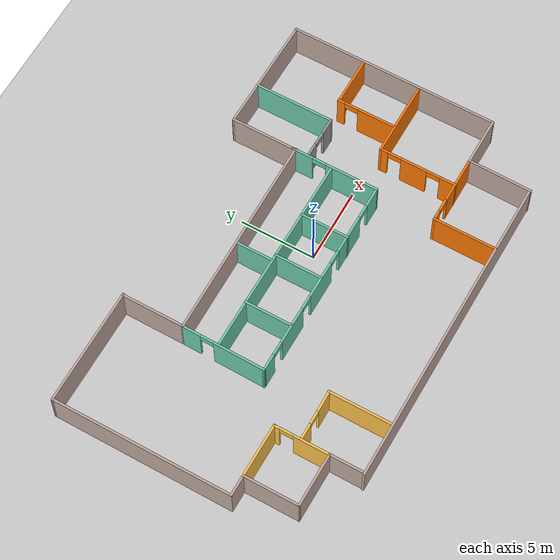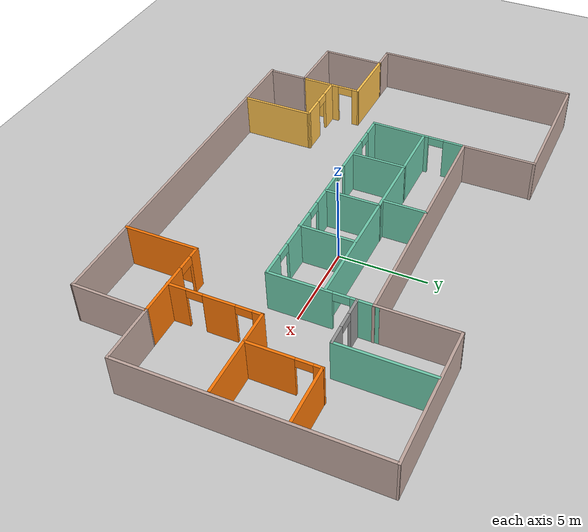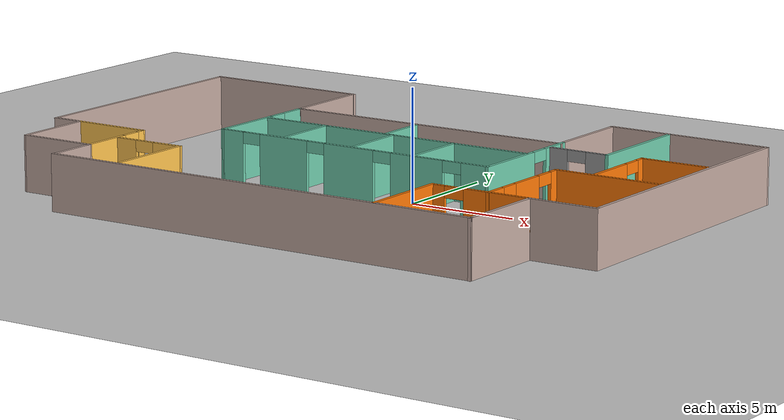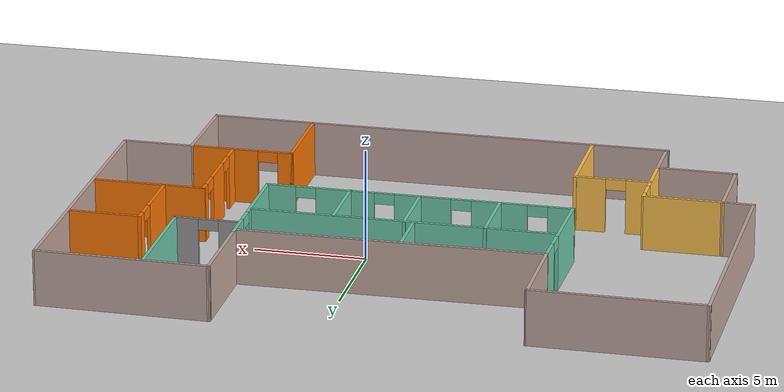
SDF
<sdf version="1.7">
 <world name="default">
  <model name="ground_plane">
   <static>1</static>
   <link name="link">
    <collision name="collision">
     <geometry><plane><normal>0 0 1</normal><size>100 100</size></plane></geometry>
     <surface><friction><ode><mu>100</mu><mu2>50</mu2></ode></friction></surface>
    </collision>
    <visual name="visual">
     <cast_shadows>0</cast_shadows>
     <geometry><plane><normal>0 0 1</normal><size>100 100</size></plane></geometry>
     <material>
      <script><uri>file://media/materials/scripts/gazebo.material</uri><name>Gazebo/Grey</name></script>
     </material>
    </visual>
   </link>
  </model>
  <model name="task_env">
   <pose>-1.95063 -0.71623 0 0 -0 0</pose>
   <link name="Wall_0">
    <collision name="Wall_0_Collision">
     <geometry><box><size>21 0.15 2.5</size></box></geometry>
     <pose>0 0 1.25 0 -0 0</pose>
    </collision>
    <visual name="Wall_0_Visual">
     <pose>0 0 1.25 0 -0 0</pose>
     <geometry><box><size>21 0.15 2.5</size></box></geometry>
     <material>
      <script><uri>file://media/materials/scripts/gazebo.material</uri><name>Gazebo/Grey</name></script>
      <ambient>0.760784 0.662745 0.627451 1</ambient>
     </material>
     <meta><layer>0</layer></meta>
    </visual>
    <pose>0.813601 -9.0219 0 0 -0 3.14159</pose>
   </link>
   <link name="Wall_14">
    <pose>-6.81536 1.8239 0 0 -0 -1.58573</pose>
    <visual name="Wall_14_Visual_0">
     <pose>-2.17991 0 1.25 0 -0 0</pose>
     <geometry><box><size>1.29492 0.15 2.5</size></box></geometry>
     <material>
      <script><uri>file://media/materials/scripts/gazebo.material</uri><name>Gazebo/Grey</name></script>
      <ambient>0.435294 0.796078 0.67451 1</ambient>
     </material>
     <meta><layer>0</layer></meta>
    </visual>
    <collision name="Wall_14_Collision_0">
     <geometry><box><size>1.29492 0.15 2.5</size></box></geometry>
     <pose>-2.17991 0 1.25 0 -0 0</pose>
    </collision>
    <visual name="Wall_14_Visual_1">
     <pose>1.09746 0 1.25 0 -0 0</pose>
     <geometry><box><size>3.45981 0.15 2.5</size></box></geometry>
     <material>
      <script><uri>file://media/materials/scripts/gazebo.material</uri><name>Gazebo/Grey</name></script>
      <ambient>0.435294 0.796078 0.67451 1</ambient>
     </material>
     <meta><layer>0</layer></meta>
    </visual>
    <collision name="Wall_14_Collision_1">
     <geometry><box><size>3.45981 0.15 2.5</size></box></geometry>
     <pose>1.09746 0 1.25 0 -0 0</pose>
    </collision>
    <visual name="Wall_14_Visual_2">
     <pose>-1.08245 0 2.25 0 -0 0</pose>
     <geometry><box><size>0.9 0.15 0.5</size></box></geometry>
     <material>
      <script><uri>file://media/materials/scripts/gazebo.material</uri><name>Gazebo/Grey</name></script>
      <ambient>0.435294 0.796078 0.67451 1</ambient>
     </material>
     <meta><layer>0</layer></meta>
    </visual>
    <collision name="Wall_14_Collision_2">
     <geometry><box><size>0.9 0.15 0.5</size></box></geometry>
     <pose>-1.08245 0 2.25 0 -0 0</pose>
    </collision>
   </link>
   <link name="Wall_15">
    <pose>-0.056466 -0.928165 0 0 -0 0</pose>
    <visual name="Wall_15_Visual_0">
     <pose>-6.28596 0 1.25 0 -0 0</pose>
     <geometry><box><size>1.17807 0.15 2.5</size></box></geometry>
     <material>
      <script><uri>file://media/materials/scripts/gazebo.material</uri><name>Gazebo/Grey</name></script>
      <ambient>0.435294 0.796078 0.67451 1</ambient>
     </material>
     <meta><layer>0</layer></meta>
    </visual>
    <collision name="Wall_15_Collision_0">
     <geometry><box><size>1.17807 0.15 2.5</size></box></geometry>
     <pose>-6.28596 0 1.25 0 -0 0</pose>
    </collision>
    <visual name="Wall_15_Visual_1">
     <pose>-3.55454 0 1.25 0 -0 0</pose>
     <geometry><box><size>2.48478 0.15 2.5</size></box></geometry>
     <material>
      <script><uri>file://media/materials/scripts/gazebo.material</uri><name>Gazebo/Grey</name></script>
      <ambient>0.435294 0.796078 0.67451 1</ambient>
     </material>
     <meta><layer>0</layer></meta>
    </visual>
    <collision name="Wall_15_Collision_1">
     <geometry><box><size>2.48478 0.15 2.5</size></box></geometry>
     <pose>-3.55454 0 1.25 0 -0 0</pose>
    </collision>
    <visual name="Wall_15_Visual_2">
     <pose>-0.146887 0 1.25 0 -0 0</pose>
     <geometry><box><size>2.53052 0.15 2.5</size></box></geometry>
     <material>
      <script><uri>file://media/materials/scripts/gazebo.material</uri><name>Gazebo/Grey</name></script>
      <ambient>0.435294 0.796078 0.67451 1</ambient>
     </material>
     <meta><layer>0</layer></meta>
    </visual>
    <collision name="Wall_15_Collision_2">
     <geometry><box><size>2.53052 0.15 2.5</size></box></geometry>
     <pose>-0.146887 0 1.25 0 -0 0</pose>
    </collision>
    <visual name="Wall_15_Visual_3">
     <pose>3.32937 0 1.25 0 -0 0</pose>
     <geometry><box><size>2.622 0.15 2.5</size></box></geometry>
     <material>
      <script><uri>file://media/materials/scripts/gazebo.material</uri><name>Gazebo/Grey</name></script>
      <ambient>0.435294 0.796078 0.67451 1</ambient>
     </material>
     <meta><layer>0</layer></meta>
    </visual>
    <collision name="Wall_15_Collision_3">
     <geometry><box><size>2.622 0.15 2.5</size></box></geometry>
     <pose>3.32937 0 1.25 0 -0 0</pose>
    </collision>
    <visual name="Wall_15_Visual_4">
     <pose>6.20769 0 1.25 0 -0 0</pose>
     <geometry><box><size>1.33463 0.15 2.5</size></box></geometry>
     <material>
      <script><uri>file://media/materials/scripts/gazebo.material</uri><name>Gazebo/Grey</name></script>
      <ambient>0.435294 0.796078 0.67451 1</ambient>
     </material>
     <meta><layer>0</layer></meta>
    </visual>
    <collision name="Wall_15_Collision_4">
     <geometry><box><size>1.33463 0.15 2.5</size></box></geometry>
     <pose>6.20769 0 1.25 0 -0 0</pose>
    </collision>
    <visual name="Wall_15_Visual_5">
     <pose>-5.24693 0 2.25 0 -0 0</pose>
     <geometry><box><size>0.9 0.15 0.5</size></box></geometry>
     <material>
      <script><uri>file://media/materials/scripts/gazebo.material</uri><name>Gazebo/Grey</name></script>
      <ambient>0.435294 0.796078 0.67451 1</ambient>
     </material>
     <meta><layer>0</layer></meta>
    </visual>
    <collision name="Wall_15_Collision_5">
     <geometry><box><size>0.9 0.15 0.5</size></box></geometry>
     <pose>-5.24693 0 2.25 0 -0 0</pose>
    </collision>
    <visual name="Wall_15_Visual_6">
     <pose>-1.86215 0 2.25 0 -0 0</pose>
     <geometry><box><size>0.9 0.15 0.5</size></box></geometry>
     <material>
      <script><uri>file://media/materials/scripts/gazebo.material</uri><name>Gazebo/Grey</name></script>
      <ambient>0.435294 0.796078 0.67451 1</ambient>
     </material>
     <meta><layer>0</layer></meta>
    </visual>
    <collision name="Wall_15_Collision_6">
     <geometry><box><size>0.9 0.15 0.5</size></box></geometry>
     <pose>-1.86215 0 2.25 0 -0 0</pose>
    </collision>
    <visual name="Wall_15_Visual_7">
     <pose>1.56837 0 2.25 0 -0 0</pose>
     <geometry><box><size>0.9 0.15 0.5</size></box></geometry>
     <material>
      <script><uri>file://media/materials/scripts/gazebo.material</uri><name>Gazebo/Grey</name></script>
      <ambient>0.435294 0.796078 0.67451 1</ambient>
     </material>
     <meta><layer>0</layer></meta>
    </visual>
    <collision name="Wall_15_Collision_7">
     <geometry><box><size>0.9 0.15 0.5</size></box></geometry>
     <pose>1.56837 0 2.25 0 -0 0</pose>
    </collision>
    <visual name="Wall_15_Visual_8">
     <pose>5.09037 0 2.25 0 -0 0</pose>
     <geometry><box><size>0.9 0.15 0.5</size></box></geometry>
     <material>
      <script><uri>file://media/materials/scripts/gazebo.material</uri><name>Gazebo/Grey</name></script>
      <ambient>0.435294 0.796078 0.67451 1</ambient>
     </material>
     <meta><layer>0</layer></meta>
    </visual>
    <collision name="Wall_15_Collision_8">
     <geometry><box><size>0.9 0.15 0.5</size></box></geometry>
     <pose>5.09037 0 2.25 0 -0 0</pose>
    </collision>
   </link>
   <link name="Wall_16">
    <pose>6.77412 1.99683 0 0 -0 1.5708</pose>
    <visual name="Wall_16_Visual_0">
     <pose>-1.2114 0 1.25 0 -0 0</pose>
     <geometry><box><size>3.57719 0.15 2.5</size></box></geometry>
     <material>
      <script><uri>file://media/materials/scripts/gazebo.material</uri><name>Gazebo/Grey</name></script>
      <ambient>0.435294 0.796078 0.67451 1</ambient>
     </material>
     <meta><layer>0</layer></meta>
    </visual>
    <collision name="Wall_16_Collision_0">
     <geometry><box><size>3.57719 0.15 2.5</size></box></geometry>
     <pose>-1.2114 0 1.25 0 -0 0</pose>
    </collision>
    <visual name="Wall_16_Visual_1">
     <pose>2.2386 0 1.25 0 -0 0</pose>
     <geometry><box><size>1.52281 0.15 2.5</size></box></geometry>
     <material>
      <script><uri>file://media/materials/scripts/gazebo.material</uri><name>Gazebo/Grey</name></script>
      <ambient>0.435294 0.796078 0.67451 1</ambient>
     </material>
     <meta><layer>0</layer></meta>
    </visual>
    <collision name="Wall_16_Collision_1">
     <geometry><box><size>1.52281 0.15 2.5</size></box></geometry>
     <pose>2.2386 0 1.25 0 -0 0</pose>
    </collision>
    <visual name="Wall_16_Visual_2">
     <pose>1.02719 0 2.25 0 -0 0</pose>
     <geometry><box><size>0.9 0.15 0.5</size></box></geometry>
     <material>
      <script><uri>file://media/materials/scripts/gazebo.material</uri><name>Gazebo/Grey</name></script>
      <ambient>0.435294 0.796078 0.67451 1</ambient>
     </material>
     <meta><layer>0</layer></meta>
    </visual>
    <collision name="Wall_16_Collision_2">
     <geometry><box><size>0.9 0.15 0.5</size></box></geometry>
     <pose>1.02719 0 2.25 0 -0 0</pose>
    </collision>
   </link>
   <link name="Wall_18">
    <collision name="Wall_18_Collision">
     <geometry><box><size>13.5 0.15 2.5</size></box></geometry>
     <pose>0 0 1.25 0 -0 0</pose>
    </collision>
    <visual name="Wall_18_Visual">
     <pose>0 0 1.25 0 -0 0</pose>
     <geometry><box><size>13.5 0.15 2.5</size></box></geometry>
     <material>
      <script><uri>file://media/materials/scripts/gazebo.material</uri><name>Gazebo/Grey</name></script>
      <ambient>0.435294 0.796078 0.67451 1</ambient>
     </material>
     <meta><layer>0</layer></meta>
    </visual>
    <pose>-0.003534 2.1603 0 0 -0 0</pose>
   </link>
   <link name="Wall_2">
    <collision name="Wall_2_Collision">
     <geometry><box><size>4.30502 0.15 2.5</size></box></geometry>
     <pose>0 0 1.25 0 -0 0</pose>
    </collision>
    <visual name="Wall_2_Visual">
     <pose>0 0 1.25 0 -0 0</pose>
     <geometry><box><size>4.30502 0.15 2.5</size></box></geometry>
     <material>
      <script><uri>file://media/materials/scripts/gazebo.material</uri><name>Gazebo/Grey</name></script>
      <ambient>0.760784 0.662745 0.627451 1</ambient>
     </material>
     <meta><layer>0</layer></meta>
    </visual>
    <pose>11.269 -6.97503 0 0 -0 1.55615</pose>
   </link>
   <link name="Wall_20">
    <collision name="Wall_20_Collision">
     <geometry><box><size>2.5 0.15 2.5</size></box></geometry>
     <pose>0 0 1.25 0 -0 0</pose>
    </collision>
    <visual name="Wall_20_Visual">
     <pose>0 0 1.25 0 -0 0</pose>
     <geometry><box><size>2.5 0.15 2.5</size></box></geometry>
     <material>
      <script><uri>file://media/materials/scripts/gazebo.material</uri><name>Gazebo/Grey</name></script>
      <ambient>0.435294 0.796078 0.67451 1</ambient>
     </material>
     <meta><layer>0</layer></meta>
    </visual>
    <pose>-0.484987 3.44269 0 0 -0 -1.5708</pose>
   </link>
   <link name="Wall_22">
    <collision name="Wall_22_Collision">
     <geometry><box><size>3.25 0.15 2.5</size></box></geometry>
     <pose>0 0 1.25 0 -0 0</pose>
    </collision>
    <visual name="Wall_22_Visual">
     <pose>0 0 1.25 0 -0 0</pose>
     <geometry><box><size>3.25 0.15 2.5</size></box></geometry>
     <material>
      <script><uri>file://media/materials/scripts/gazebo.material</uri><name>Gazebo/Grey</name></script>
      <ambient>0.435294 0.796078 0.67451 1</ambient>
     </material>
     <meta><layer>0</layer></meta>
    </visual>
    <pose>-3.62724 0.626735 0 0 -0 -1.5708</pose>
   </link>
   <link name="Wall_26">
    <collision name="Wall_26_Collision">
     <geometry><box><size>3.25 0.15 2.5</size></box></geometry>
     <pose>0 0 1.25 0 -0 0</pose>
    </collision>
    <visual name="Wall_26_Visual">
     <pose>0 0 1.25 0 -0 0</pose>
     <geometry><box><size>3.25 0.15 2.5</size></box></geometry>
     <material>
      <script><uri>file://media/materials/scripts/gazebo.material</uri><name>Gazebo/Grey</name></script>
      <ambient>0.435294 0.796078 0.67451 1</ambient>
     </material>
     <meta><layer>0</layer></meta>
    </visual>
    <pose>3.05396 0.591755 0 0 -0 -1.5708</pose>
   </link>
   <link name="Wall_28">
    <collision name="Wall_28_Collision">
     <geometry><box><size>3.25 0.15 2.5</size></box></geometry>
     <pose>0 0 1.25 0 -0 0</pose>
    </collision>
    <visual name="Wall_28_Visual">
     <pose>0 0 1.25 0 -0 0</pose>
     <geometry><box><size>3.25 0.15 2.5</size></box></geometry>
     <material>
      <script><uri>file://media/materials/scripts/gazebo.material</uri><name>Gazebo/Grey</name></script>
      <ambient>0.435294 0.796078 0.67451 1</ambient>
     </material>
     <meta><layer>0</layer></meta>
    </visual>
    <pose>-0.072747 0.627413 0 0 -0 -1.5708</pose>
   </link>
   <link name="Wall_3">
    <collision name="Wall_3_Collision">
     <geometry><box><size>3.25 0.15 2.5</size></box></geometry>
     <pose>0 0 1.25 0 -0 0</pose>
    </collision>
    <visual name="Wall_3_Visual">
     <pose>0 0 1.25 0 -0 0</pose>
     <geometry><box><size>3.25 0.15 2.5</size></box></geometry>
     <material>
      <script><uri>file://media/materials/scripts/gazebo.material</uri><name>Gazebo/Grey</name></script>
      <ambient>0.760784 0.662745 0.627451 1</ambient>
     </material>
     <meta><layer>0</layer></meta>
    </visual>
    <pose>12.8494 -4.89774 0 0 -0 0</pose>
   </link>
   <link name="Wall_30">
    <pose>8.21532 3.82761 0 0 -0 0</pose>
    <visual name="Wall_30_Visual_0">
     <pose>-0.999101 0 1.25 0 -0 0</pose>
     <geometry><box><size>1.0018 0.15 2.5</size></box></geometry>
     <material>
      <script><uri>file://media/materials/scripts/gazebo.material</uri><name>Gazebo/Grey</name></script>
      <ambient>1 1 1 1</ambient>
     </material>
     <meta><layer>0</layer></meta>
    </visual>
    <collision name="Wall_30_Collision_0">
     <geometry><box><size>1.0018 0.15 2.5</size></box></geometry>
     <pose>-0.999101 0 1.25 0 -0 0</pose>
    </collision>
    <visual name="Wall_30_Visual_1">
     <pose>0.950899 0 1.25 0 -0 0</pose>
     <geometry><box><size>1.0982 0.15 2.5</size></box></geometry>
     <material>
      <script><uri>file://media/materials/scripts/gazebo.material</uri><name>Gazebo/Grey</name></script>
      <ambient>1 1 1 1</ambient>
     </material>
     <meta><layer>0</layer></meta>
    </visual>
    <collision name="Wall_30_Collision_1">
     <geometry><box><size>1.0982 0.15 2.5</size></box></geometry>
     <pose>0.950899 0 1.25 0 -0 0</pose>
    </collision>
    <visual name="Wall_30_Visual_2">
     <pose>-0.048203 0 2.25 0 -0 0</pose>
     <geometry><box><size>0.9 0.15 0.5</size></box></geometry>
     <material>
      <script><uri>file://media/materials/scripts/gazebo.material</uri><name>Gazebo/Grey</name></script>
      <ambient>1 1 1 1</ambient>
     </material>
     <meta><layer>0</layer></meta>
    </visual>
    <collision name="Wall_30_Collision_2">
     <geometry><box><size>0.9 0.15 0.5</size></box></geometry>
     <pose>-0.048203 0 2.25 0 -0 0</pose>
    </collision>
   </link>
   <link name="Wall_31">
    <collision name="Wall_31_Collision">
     <geometry><box><size>5.25 0.15 2.5</size></box></geometry>
     <pose>0 0 1.25 0 -0 0</pose>
    </collision>
    <visual name="Wall_31_Visual">
     <pose>0 0 1.25 0 -0 0</pose>
     <geometry><box><size>5.25 0.15 2.5</size></box></geometry>
     <material>
      <script><uri>file://media/materials/scripts/gazebo.material</uri><name>Gazebo/Grey</name></script>
      <ambient>0.435294 0.796078 0.67451 1</ambient>
     </material>
     <meta><layer>0</layer></meta>
    </visual>
    <pose>9.64032 6.37761 0 0 -0 1.5708</pose>
   </link>
   <link name="Wall_33">
    <pose>-7.87138 -4.88643 0 0 -0 0.010314</pose>
    <visual name="Wall_33_Visual_0">
     <pose>-1.17411 0 1.25 0 -0 0</pose>
     <geometry><box><size>1.1406 0.15 2.5</size></box></geometry>
     <material>
      <script><uri>file://media/materials/scripts/gazebo.material</uri><name>Gazebo/Grey</name></script>
      <ambient>1 0.764706 0.305882 1</ambient>
     </material>
     <meta><layer>0</layer></meta>
    </visual>
    <collision name="Wall_33_Collision_0">
     <geometry><box><size>1.1406 0.15 2.5</size></box></geometry>
     <pose>-1.17411 0 1.25 0 -0 0</pose>
    </collision>
    <visual name="Wall_33_Visual_1">
     <pose>1.0203 0 1.25 0 -0 0</pose>
     <geometry><box><size>1.44823 0.15 2.5</size></box></geometry>
     <material>
      <script><uri>file://media/materials/scripts/gazebo.material</uri><name>Gazebo/Grey</name></script>
      <ambient>1 0.764706 0.305882 1</ambient>
     </material>
     <meta><layer>0</layer></meta>
    </visual>
    <collision name="Wall_33_Collision_1">
     <geometry><box><size>1.44823 0.15 2.5</size></box></geometry>
     <pose>1.0203 0 1.25 0 -0 0</pose>
    </collision>
    <visual name="Wall_33_Visual_2">
     <pose>-0.153815 0 2.25 0 -0 0</pose>
     <geometry><box><size>0.9 0.15 0.5</size></box></geometry>
     <material>
      <script><uri>file://media/materials/scripts/gazebo.material</uri><name>Gazebo/Grey</name></script>
      <ambient>1 0.764706 0.305882 1</ambient>
     </material>
     <meta><layer>0</layer></meta>
    </visual>
    <collision name="Wall_33_Collision_2">
     <geometry><box><size>0.9 0.15 0.5</size></box></geometry>
     <pose>-0.153815 0 2.25 0 -0 0</pose>
    </collision>
   </link>
   <link name="Wall_34">
    <collision name="Wall_34_Collision">
     <geometry><box><size>4.25 0.15 2.5</size></box></geometry>
     <pose>0 0 1.25 0 -0 0</pose>
    </collision>
    <visual name="Wall_34_Visual">
     <pose>0 0 1.25 0 -0 0</pose>
     <geometry><box><size>4.25 0.15 2.5</size></box></geometry>
     <material>
      <script><uri>file://media/materials/scripts/gazebo.material</uri><name>Gazebo/Grey</name></script>
      <ambient>1 0.764706 0.305882 1</ambient>
     </material>
     <meta><layer>0</layer></meta>
    </visual>
    <pose>-6.20205 -6.89932 0 0 -0 -1.5708</pose>
   </link>
   <link name="Wall_36">
    <pose>8.99944 -4.89774 0 0 -0 3.14159</pose>
    <visual name="Wall_36_Visual_0">
     <pose>-0.798861 0 1.25 0 -0 0</pose>
     <geometry><box><size>3.15228 0.15 2.5</size></box></geometry>
     <material>
      <script><uri>file://media/materials/scripts/gazebo.material</uri><name>Gazebo/Grey</name></script>
      <ambient>0.996078 0.47451 0.0196078 1</ambient>
     </material>
     <meta><layer>0</layer></meta>
    </visual>
    <collision name="Wall_36_Collision_0">
     <geometry><box><size>3.15228 0.15 2.5</size></box></geometry>
     <pose>-0.798861 0 1.25 0 -0 0</pose>
    </collision>
    <visual name="Wall_36_Visual_1">
     <pose>2.02614 0 1.25 0 -0 0</pose>
     <geometry><box><size>0.697723 0.15 2.5</size></box></geometry>
     <material>
      <script><uri>file://media/materials/scripts/gazebo.material</uri><name>Gazebo/Grey</name></script>
      <ambient>0.996078 0.47451 0.0196078 1</ambient>
     </material>
     <meta><layer>0</layer></meta>
    </visual>
    <collision name="Wall_36_Collision_1">
     <geometry><box><size>0.697723 0.15 2.5</size></box></geometry>
     <pose>2.02614 0 1.25 0 -0 0</pose>
    </collision>
    <visual name="Wall_36_Visual_2">
     <pose>1.22728 0 2.25 0 -0 0</pose>
     <geometry><box><size>0.9 0.15 0.5</size></box></geometry>
     <material>
      <script><uri>file://media/materials/scripts/gazebo.material</uri><name>Gazebo/Grey</name></script>
      <ambient>0.996078 0.47451 0.0196078 1</ambient>
     </material>
     <meta><layer>0</layer></meta>
    </visual>
    <collision name="Wall_36_Collision_2">
     <geometry><box><size>0.9 0.15 0.5</size></box></geometry>
     <pose>1.22728 0 2.25 0 -0 0</pose>
    </collision>
   </link>
   <link name="Wall_37">
    <collision name="Wall_37_Collision">
     <geometry><box><size>4.25 0.15 2.5</size></box></geometry>
     <pose>0 0 1.25 0 -0 0</pose>
    </collision>
    <visual name="Wall_37_Visual">
     <pose>0 0 1.25 0 -0 0</pose>
     <geometry><box><size>4.25 0.15 2.5</size></box></geometry>
     <material>
      <script><uri>file://media/materials/scripts/gazebo.material</uri><name>Gazebo/Grey</name></script>
      <ambient>0.996078 0.47451 0.0196078 1</ambient>
     </material>
     <meta><layer>0</layer></meta>
    </visual>
    <pose>6.69944 -6.94774 0 0 -0 -1.5708</pose>
   </link>
   <link name="Wall_39">
    <pose>9.37843 -2.36401 0 0 -0 1.5708</pose>
    <visual name="Wall_39_Visual_0">
     <pose>-2.07103 0 1.25 0 -0 0</pose>
     <geometry><box><size>1.10794 0.15 2.5</size></box></geometry>
     <material>
      <script><uri>file://media/materials/scripts/gazebo.material</uri><name>Gazebo/Grey</name></script>
      <ambient>0.996078 0.47451 0.0196078 1</ambient>
     </material>
     <meta><layer>0</layer></meta>
    </visual>
    <collision name="Wall_39_Collision_0">
     <geometry><box><size>1.10794 0.15 2.5</size></box></geometry>
     <pose>-2.07103 0 1.25 0 -0 0</pose>
    </collision>
    <visual name="Wall_39_Visual_1">
     <pose>0.261125 0 1.25 0 -0 0</pose>
     <geometry><box><size>1.75636 0.15 2.5</size></box></geometry>
     <material>
      <script><uri>file://media/materials/scripts/gazebo.material</uri><name>Gazebo/Grey</name></script>
      <ambient>0.996078 0.47451 0.0196078 1</ambient>
     </material>
     <meta><layer>0</layer></meta>
    </visual>
    <collision name="Wall_39_Collision_1">
     <geometry><box><size>1.75636 0.15 2.5</size></box></geometry>
     <pose>0.261125 0 1.25 0 -0 0</pose>
    </collision>
    <visual name="Wall_39_Visual_2">
     <pose>2.33215 0 1.25 0 -0 0</pose>
     <geometry><box><size>0.585692 0.15 2.5</size></box></geometry>
     <material>
      <script><uri>file://media/materials/scripts/gazebo.material</uri><name>Gazebo/Grey</name></script>
      <ambient>0.996078 0.47451 0.0196078 1</ambient>
     </material>
     <meta><layer>0</layer></meta>
    </visual>
    <collision name="Wall_39_Collision_2">
     <geometry><box><size>0.585692 0.15 2.5</size></box></geometry>
     <pose>2.33215 0 1.25 0 -0 0</pose>
    </collision>
    <visual name="Wall_39_Visual_3">
     <pose>-1.06706 0 2.25 0 -0 0</pose>
     <geometry><box><size>0.9 0.15 0.5</size></box></geometry>
     <material>
      <script><uri>file://media/materials/scripts/gazebo.material</uri><name>Gazebo/Grey</name></script>
      <ambient>0.996078 0.47451 0.0196078 1</ambient>
     </material>
     <meta><layer>0</layer></meta>
    </visual>
    <collision name="Wall_39_Collision_3">
     <geometry><box><size>0.9 0.15 0.5</size></box></geometry>
     <pose>-1.06706 0 2.25 0 -0 0</pose>
    </collision>
    <visual name="Wall_39_Visual_4">
     <pose>1.58931 0 2.25 0 -0 0</pose>
     <geometry><box><size>0.9 0.15 0.5</size></box></geometry>
     <material>
      <script><uri>file://media/materials/scripts/gazebo.material</uri><name>Gazebo/Grey</name></script>
      <ambient>0.996078 0.47451 0.0196078 1</ambient>
     </material>
     <meta><layer>0</layer></meta>
    </visual>
    <collision name="Wall_39_Collision_4">
     <geometry><box><size>0.9 0.15 0.5</size></box></geometry>
     <pose>1.58931 0 2.25 0 -0 0</pose>
    </collision>
   </link>
   <link name="Wall_4">
    <collision name="Wall_4_Collision">
     <geometry><box><size>14 0.15 2.5</size></box></geometry>
     <pose>0 0 1.25 0 -0 0</pose>
    </collision>
    <visual name="Wall_4_Visual">
     <pose>0 0 1.25 0 -0 0</pose>
     <geometry><box><size>14 0.15 2.5</size></box></geometry>
     <material>
      <script><uri>file://media/materials/scripts/gazebo.material</uri><name>Gazebo/Grey</name></script>
      <ambient>0.760784 0.662745 0.627451 1</ambient>
     </material>
     <meta><layer>0</layer></meta>
    </visual>
    <pose>14.3994 2.02726 0 0 -0 1.5708</pose>
   </link>
   <link name="Wall_40">
    <collision name="Wall_40_Collision">
     <geometry><box><size>5 0.15 2.5</size></box></geometry>
     <pose>0 0 1.25 0 -0 0</pose>
    </collision>
    <visual name="Wall_40_Visual">
     <pose>0 0 1.25 0 -0 0</pose>
     <geometry><box><size>5 0.15 2.5</size></box></geometry>
     <material>
      <script><uri>file://media/materials/scripts/gazebo.material</uri><name>Gazebo/Grey</name></script>
      <ambient>0.996078 0.47451 0.0196078 1</ambient>
     </material>
     <meta><layer>0</layer></meta>
    </visual>
    <pose>11.8034 0.185989 0 0 -0 0</pose>
   </link>
   <link name="Wall_42">
    <pose>11.164 2.16814 0 0 -0 1.5708</pose>
    <visual name="Wall_42_Visual_0">
     <pose>-0.710725 0 1.25 0 -0 0</pose>
     <geometry><box><size>2.57855 0.15 2.5</size></box></geometry>
     <material>
      <script><uri>file://media/materials/scripts/gazebo.material</uri><name>Gazebo/Grey</name></script>
      <ambient>0.996078 0.47451 0.0196078 1</ambient>
     </material>
     <meta><layer>0</layer></meta>
    </visual>
    <collision name="Wall_42_Collision_0">
     <geometry><box><size>2.57855 0.15 2.5</size></box></geometry>
     <pose>-0.710725 0 1.25 0 -0 0</pose>
    </collision>
    <visual name="Wall_42_Visual_1">
     <pose>1.73927 0 1.25 0 -0 0</pose>
     <geometry><box><size>0.52145 0.15 2.5</size></box></geometry>
     <material>
      <script><uri>file://media/materials/scripts/gazebo.material</uri><name>Gazebo/Grey</name></script>
      <ambient>0.996078 0.47451 0.0196078 1</ambient>
     </material>
     <meta><layer>0</layer></meta>
    </visual>
    <collision name="Wall_42_Collision_1">
     <geometry><box><size>0.52145 0.15 2.5</size></box></geometry>
     <pose>1.73927 0 1.25 0 -0 0</pose>
    </collision>
    <visual name="Wall_42_Visual_2">
     <pose>1.02855 0 2.25 0 -0 0</pose>
     <geometry><box><size>0.9 0.15 0.5</size></box></geometry>
     <material>
      <script><uri>file://media/materials/scripts/gazebo.material</uri><name>Gazebo/Grey</name></script>
      <ambient>0.996078 0.47451 0.0196078 1</ambient>
     </material>
     <meta><layer>0</layer></meta>
    </visual>
    <collision name="Wall_42_Collision_2">
     <geometry><box><size>0.9 0.15 0.5</size></box></geometry>
     <pose>1.02855 0 2.25 0 -0 0</pose>
    </collision>
   </link>
   <link name="Wall_43">
    <collision name="Wall_43_Collision">
     <geometry><box><size>3.25 0.15 2.5</size></box></geometry>
     <pose>0 0 1.25 0 -0 0</pose>
    </collision>
    <visual name="Wall_43_Visual">
     <pose>0 0 1.25 0 -0 0</pose>
     <geometry><box><size>3.25 0.15 2.5</size></box></geometry>
     <material>
      <script><uri>file://media/materials/scripts/gazebo.material</uri><name>Gazebo/Grey</name></script>
      <ambient>0.996078 0.47451 0.0196078 1</ambient>
     </material>
     <meta><layer>0</layer></meta>
    </visual>
    <pose>12.714 4.07811 0 0 -0 0</pose>
   </link>
   <link name="Wall_45">
    <collision name="Wall_45_Collision">
     <geometry><box><size>3.64292 0.15 2.5</size></box></geometry>
     <pose>0 0 1.25 0 -0 0</pose>
    </collision>
    <visual name="Wall_45_Visual">
     <pose>0 0 1.25 0 -0 0</pose>
     <geometry><box><size>3.64292 0.15 2.5</size></box></geometry>
     <material>
      <script><uri>file://media/materials/scripts/gazebo.material</uri><name>Gazebo/Grey</name></script>
      <ambient>0.760784 0.662745 0.627451 1</ambient>
     </material>
     <meta><layer>0</layer></meta>
    </visual>
    <pose>-11.3041 -6.75408 0 0 -0 3.13796</pose>
   </link>
   <link name="Wall_46">
    <collision name="Wall_46_Collision">
     <geometry><box><size>3.75 0.15 2.5</size></box></geometry>
     <pose>0 0 1.25 0 -0 0</pose>
    </collision>
    <visual name="Wall_46_Visual">
     <pose>0 0 1.25 0 -0 0</pose>
     <geometry><box><size>3.75 0.15 2.5</size></box></geometry>
     <material>
      <script><uri>file://media/materials/scripts/gazebo.material</uri><name>Gazebo/Grey</name></script>
      <ambient>0.760784 0.662745 0.627451 1</ambient>
     </material>
     <meta><layer>0</layer></meta>
    </visual>
    <pose>-13.0506 -4.94774 0 0 -0 1.5708</pose>
   </link>
   <link name="Wall_5">
    <collision name="Wall_5_Collision">
     <geometry><box><size>7.78206 0.15 2.5</size></box></geometry>
     <pose>0 0 1.25 0 -0 0</pose>
    </collision>
    <visual name="Wall_5_Visual">
     <pose>0 0 1.25 0 -0 0</pose>
     <geometry><box><size>7.78206 0.15 2.5</size></box></geometry>
     <material>
      <script><uri>file://media/materials/scripts/gazebo.material</uri><name>Gazebo/Grey</name></script>
      <ambient>0.760784 0.662745 0.627451 1</ambient>
     </material>
     <meta><layer>0</layer></meta>
    </visual>
    <pose>10.5841 9.00234 0 0 -0 3.12847</pose>
   </link>
   <link name="Wall_50">
    <collision name="Wall_50_Collision">
     <geometry><box><size>12 0.15 2.5</size></box></geometry>
     <pose>0 0 1.25 0 -0 0</pose>
    </collision>
    <visual name="Wall_50_Visual">
     <pose>0 0 1.25 0 -0 0</pose>
     <geometry><box><size>12 0.15 2.5</size></box></geometry>
     <material>
      <script><uri>file://media/materials/scripts/gazebo.material</uri><name>Gazebo/Grey</name></script>
      <ambient>0.760784 0.662745 0.627451 1</ambient>
     </material>
     <meta><layer>0</layer></meta>
    </visual>
    <pose>-14.4006 2.77726 0 0 -0 -1.5708</pose>
   </link>
   <link name="Wall_52">
    <collision name="Wall_52_Collision">
     <geometry><box><size>1.5 0.15 2.5</size></box></geometry>
     <pose>0 0 1.25 0 -0 0</pose>
    </collision>
    <visual name="Wall_52_Visual">
     <pose>0 0 1.25 0 -0 0</pose>
     <geometry><box><size>1.5 0.15 2.5</size></box></geometry>
     <material>
      <script><uri>file://media/materials/scripts/gazebo.material</uri><name>Gazebo/Grey</name></script>
      <ambient>0.760784 0.662745 0.627451 1</ambient>
     </material>
     <meta><layer>0</layer></meta>
    </visual>
    <pose>-13.7256 -3.14774 0 0 -0 0</pose>
   </link>
   <link name="Wall_54">
    <collision name="Wall_54_Collision">
     <geometry><box><size>3.64292 0.15 2.5</size></box></geometry>
     <pose>0 0 1.25 0 -0 0</pose>
    </collision>
    <visual name="Wall_54_Visual">
     <pose>0 0 1.25 0 -0 0</pose>
     <geometry><box><size>3.64292 0.15 2.5</size></box></geometry>
     <material>
      <script><uri>file://media/materials/scripts/gazebo.material</uri><name>Gazebo/Grey</name></script>
      <ambient>1 0.764706 0.305882 1</ambient>
     </material>
     <meta><layer>0</layer></meta>
    </visual>
    <pose>-11.3041 -3.15408 0 0 -0 -0.003628</pose>
   </link>
   <link name="Wall_57">
    <pose>-9.55767 -4.96042 0 0 -0 -1.5708</pose>
    <visual name="Wall_57_Visual_0">
     <pose>-1.65559 0 1.25 0 -0 0</pose>
     <geometry><box><size>0.438815 0.15 2.5</size></box></geometry>
     <material>
      <script><uri>file://media/materials/scripts/gazebo.material</uri><name>Gazebo/Grey</name></script>
      <ambient>1 0.764706 0.305882 1</ambient>
     </material>
     <meta><layer>0</layer></meta>
    </visual>
    <collision name="Wall_57_Collision_0">
     <geometry><box><size>0.438815 0.15 2.5</size></box></geometry>
     <pose>-1.65559 0 1.25 0 -0 0</pose>
    </collision>
    <visual name="Wall_57_Visual_1">
     <pose>0.669408 0 1.25 0 -0 0</pose>
     <geometry><box><size>2.41119 0.15 2.5</size></box></geometry>
     <material>
      <script><uri>file://media/materials/scripts/gazebo.material</uri><name>Gazebo/Grey</name></script>
      <ambient>1 0.764706 0.305882 1</ambient>
     </material>
     <meta><layer>0</layer></meta>
    </visual>
    <collision name="Wall_57_Collision_1">
     <geometry><box><size>2.41119 0.15 2.5</size></box></geometry>
     <pose>0.669408 0 1.25 0 -0 0</pose>
    </collision>
    <visual name="Wall_57_Visual_2">
     <pose>-0.986185 0 2.25 0 -0 0</pose>
     <geometry><box><size>0.9 0.15 0.5</size></box></geometry>
     <material>
      <script><uri>file://media/materials/scripts/gazebo.material</uri><name>Gazebo/Grey</name></script>
      <ambient>1 0.764706 0.305882 1</ambient>
     </material>
     <meta><layer>0</layer></meta>
    </visual>
    <collision name="Wall_57_Collision_2">
     <geometry><box><size>0.9 0.15 0.5</size></box></geometry>
     <pose>-0.986185 0 2.25 0 -0 0</pose>
    </collision>
   </link>
   <link name="Wall_59">
    <collision name="Wall_59_Collision">
     <geometry><box><size>2.25 0.15 2.5</size></box></geometry>
     <pose>0 0 1.25 0 -0 0</pose>
    </collision>
    <visual name="Wall_59_Visual">
     <pose>0 0 1.25 0 -0 0</pose>
     <geometry><box><size>2.25 0.15 2.5</size></box></geometry>
     <material>
      <script><uri>file://media/materials/scripts/gazebo.material</uri><name>Gazebo/Grey</name></script>
      <ambient>0.760784 0.662745 0.627451 1</ambient>
     </material>
     <meta><layer>0</layer></meta>
    </visual>
    <pose>-9.55767 -7.81042 0 0 -0 -1.5708</pose>
   </link>
   <link name="Wall_6">
    <collision name="Wall_6_Collision">
     <geometry><box><size>4.5 0.15 2.5</size></box></geometry>
     <pose>0 0 1.25 0 -0 0</pose>
    </collision>
    <visual name="Wall_6_Visual">
     <pose>0 0 1.25 0 -0 0</pose>
     <geometry><box><size>4.5 0.15 2.5</size></box></geometry>
     <material>
      <script><uri>file://media/materials/scripts/gazebo.material</uri><name>Gazebo/Grey</name></script>
      <ambient>0.760784 0.662745 0.627451 1</ambient>
     </material>
     <meta><layer>0</layer></meta>
    </visual>
    <pose>6.76885 6.87742 0 0 -0 -1.5708</pose>
   </link>
   <link name="Wall_7">
    <collision name="Wall_7_Collision">
     <geometry><box><size>13.7243 0.15 2.5</size></box></geometry>
     <pose>0 0 1.25 0 -0 0</pose>
    </collision>
    <visual name="Wall_7_Visual">
     <pose>0 0 1.25 0 -0 0</pose>
     <geometry><box><size>13.7243 0.15 2.5</size></box></geometry>
     <material>
      <script><uri>file://media/materials/scripts/gazebo.material</uri><name>Gazebo/Grey</name></script>
      <ambient>0.760784 0.662745 0.627451 1</ambient>
     </material>
     <meta><layer>0</layer></meta>
    </visual>
    <pose>0.012586 4.63919 0 0 -0 -3.13228</pose>
   </link>
   <link name="Wall_8">
    <collision name="Wall_8_Collision">
     <geometry><box><size>4.25 0.15 2.5</size></box></geometry>
     <pose>0 0 1.25 0 -0 0</pose>
    </collision>
    <visual name="Wall_8_Visual">
     <pose>0 0 1.25 0 -0 0</pose>
     <geometry><box><size>4.25 0.15 2.5</size></box></geometry>
     <material>
      <script><uri>file://media/materials/scripts/gazebo.material</uri><name>Gazebo/Grey</name></script>
      <ambient>0.760784 0.662745 0.627451 1</ambient>
     </material>
     <meta><layer>0</layer></meta>
    </visual>
    <pose>-6.77426 6.62596 0 0 -0 1.5708</pose>
   </link>
   <link name="Wall_9">
    <collision name="Wall_9_Collision">
     <geometry><box><size>7.80265 0.15 2.5</size></box></geometry>
     <pose>0 0 1.25 0 -0 0</pose>
    </collision>
    <visual name="Wall_9_Visual">
     <pose>0 0 1.25 0 -0 0</pose>
     <geometry><box><size>7.80265 0.15 2.5</size></box></geometry>
     <material>
      <script><uri>file://media/materials/scripts/gazebo.material</uri><name>Gazebo/Grey</name></script>
      <ambient>0.760784 0.662745 0.627451 1</ambient>
     </material>
     <meta><layer>0</layer></meta>
    </visual>
    <pose>-10.5743 8.68911 0 0 -0 3.13816</pose>
   </link>
   <static>1</static>
  </model>
 </world>
</sdf>
